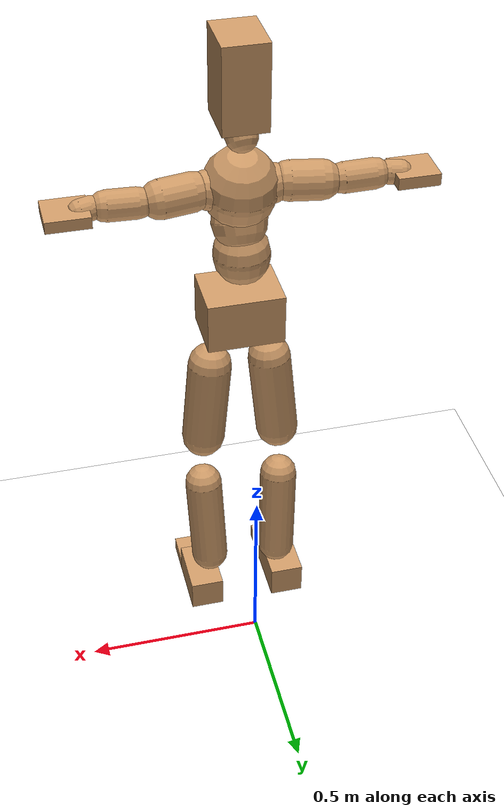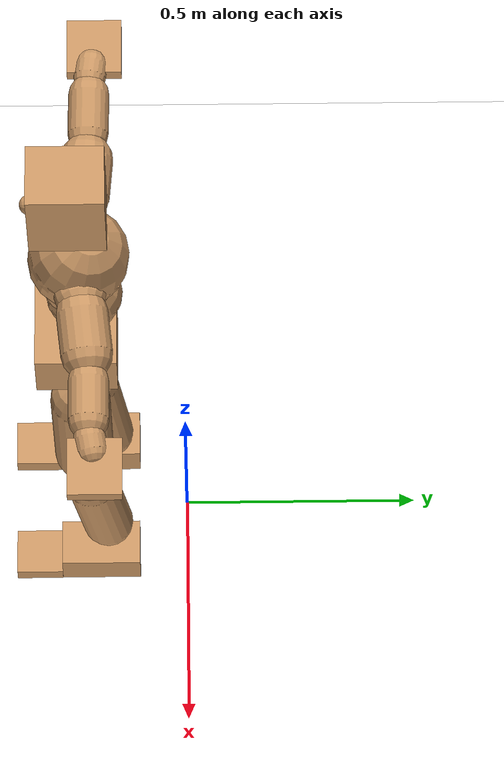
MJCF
<mujoco model="humanoid">
  <option integrator="implicitfast" />

  <visual>
    <global offwidth="1280" offheight="960" />
    <headlight active="1" ambient="0.34 0.34 0.34" diffuse="0.5 0.5 0.5" />
  </visual>

  <default>
    <joint damping="2" stiffness="2" armature="0.01" limited="true" solimplimit="0 .99 .01" />
    <geom condim="1" friction="0.7 0.005 0.0001" solimp=".99 .99 .003" solref="0.015 1" margin="0.001" rgba="0.8 0.6 .4 1" />
    <default class="smplcontact">
      <geom condim="3" friction="1. 0.005 0.0001" solref="0.015 1" solimp="0.98 0.98 0.001" priority="1" />
    </default>
    <default class="stiff_medium">
      <joint stiffness="10" />
    </default>
    <default class="stiff_medium_higher">
      <joint stiffness="50" />
    </default>
    <default class="stiff_high">
      <joint stiffness="100" />
    </default>
  </default>

  <asset>
    <texture type="skybox" builtin="gradient" rgb1="0.99 0.99 0.99" rgb2="0.608 0.828 0.892" width="100" />
    <texture builtin="flat" height="1278" mark="cross" markrgb="1 1 1" name="texgeom" random="0.01" rgb1="0.8 0.6 0.4" rgb2="0.8 0.6 0.4" type="cube" width="127" />
    <texture name="texplane" type="2d" builtin="checker" markrgb="1 1 1" rgb1="0.756 0.772 0.76" rgb2="0.6 0.6 0.6" width="100" height="100" />
    <material name="MatPlane" reflectance="0.5" texture="texplane" texrepeat="1 1" texuniform="true" />
    <material name="geom" texture="texgeom" texuniform="true" />
  </asset>

  <worldbody>
    <light name="tracking_light" pos="0 0 7" dir="0 0 -1" directional="true" cutoff="100" exponent="1" diffuse="1 1 1" specular="0.1 0.1 0.1" mode="trackcom" />
    <camera name="back" pos="0 3 2.4" xyaxes="-1 0 0 0 -1 2" mode="trackcom" />
    <camera name="side" pos="-3 0 2.4" xyaxes="0 -1 0 1 0 2" mode="trackcom" />
    <camera name="front_side" pos="-2.8 -2.8 0.8" xyaxes="0.5 -0.5 0 0.1 0.1 1" mode="trackcom" />
    <geom condim="3" name="floor" pos="0 0 0" rgba="1 1 1 1" size="100 100 .2" type="plane" material="MatPlane" />
    <body name="Pelvis" pos="-0.0018 -0.2233 1.05109" euler="90 0 0">
      <site name="Pelvis" size="0.01" />
      <freejoint name="Pelvis" />
      <geom type="box" pos="-0.0000 -0.0121 -0.0055" size="0.1069 0.0722 0.083" quat="1.0000 0.0000 0.0000 0.0000" density="3165.830099" name="Pelvis" />
      <body name="L_Hip" pos="0.0781875 -0.102825 -0.00765">
        <joint name="L_Hip_x" type="hinge" pos="0 0 0" axis="1 0 0" stiffness="12.190417346938776" range="-160.0 22.92" class="stiff_medium" damping="19.23943835853268" armature="0.013495335550763793"/>
        <joint name="L_Hip_y" type="hinge" pos="0 0 0" axis="0 1 0" stiffness="12.1624156122449" range="-70.0 70.0" class="stiff_medium" damping="12.013485255911052" armature="0.011866378571103064"/>
        <joint name="L_Hip_z" type="hinge" pos="0 0 0" axis="0 0 1" stiffness="12.164813061224491" range="-28.65 90.0" class="stiff_medium" damping="12.81394800146982" armature="0.013497721876857558"/>
        <geom type="capsule" density="2040.816327" fromto="0.0077625 -0.084375 -0.0010125 0.030825 -0.337725 -0.00405" size="0.0615" name="L_Hip" />
        <body name="L_Knee" pos="0.0385875 -0.4221 -0.0050625">
          <joint name="L_Knee_x" type="hinge" pos="0 0 0" axis="1 0 0" range="-5.16 171.89" damping="10.076823862713256" armature="0.013188848617403113" stiffness="2.4059714693877554"/>
          <joint name="L_Knee_y" type="hinge" pos="0 0 0" axis="0 1 0" range="-4.58 6.88" damping="9.486100019400173" armature="0.011596019506642574" stiffness="2.4250264693877552"/>
          <joint name="L_Knee_z" type="hinge" pos="0 0 0" axis="0 0 1" range="-6.88 4.58" damping="10.063496829521752" armature="0.013200099383969112" stiffness="2.3975664285714284"/>
          <geom type="capsule" density="1234.567901" fromto="-0.0030375 -0.08955 -0.0097875 -0.0122625 -0.3582 -0.039375" size="0.0541" name="L_Knee" />
          <body name="L_Ankle" pos="-0.0153 -0.44775 -0.0491625">
            <joint name="L_Ankle_x" type="hinge" pos="0 0 0" axis="1 0 0" range="-45.84 45.84" class="stiff_medium" damping="6.897532818423138" armature="0.011747130867095388" stiffness="11.250018673469388"/>
            <joint name="L_Ankle_y" type="hinge" pos="0 0 0" axis="0 1 0" range="-74.48 22.92" class="stiff_medium" damping="3.439211388477543" armature="0.011682135831686718" stiffness="11.250011836734695"/>
            <joint name="L_Ankle_z" type="hinge" pos="0 0 0" axis="0 0 1" range="-4.58 4.58" class="stiff_medium" damping="6.751978545825255" armature="0.011256596119329512" stiffness="11.25"/>
            <geom type="box" pos="0.0262125 -0.0268875 0.027225" size="0.0483 0.0464 0.085" quat="1.0000 0.0000 0.0000 0.0000" density="449.071558" name="L_Ankle" class="smplcontact" />
            <body name="L_Toe" pos="0.0297 -0.062775 0.134213">
              <joint name="L_Toe_x" type="hinge" pos="0 0 0" axis="1 0 0" range="-91.67 22.92" armature="0.01100987413972891" damping="2.225857893684592" stiffness="2.25"/>
              <joint name="L_Toe_y" type="hinge" pos="0 0 0" axis="0 1 0" range="-4.58 4.58" armature="0.010711537859158194" damping="2.1954935747164432" stiffness="2.25"/>
              <joint name="L_Toe_z" type="hinge" pos="0 0 0" axis="0 0 1" range="-4.58 4.58" armature="0.010108317957714816" damping="2.132778254055416" stiffness="2.25"/>
              <geom type="box" pos="-0.003375 0.0061875 0.0279" size="0.0478 0.02 0.0496" quat="1.0000 0.0000 0.0000 0.0000" density="423.206892" name="L_Toe" class="smplcontact" />
            </body>
          </body>
        </body>
      </body>
      <body name="R_Hip" pos="-0.0761625 -0.101813 -0.0048375">
        <joint name="R_Hip_x" type="hinge" pos="0 0 0" axis="1 0 0" stiffness="12.190417346938776" range="-160.0 22.92" class="stiff_medium" damping="19.23943835853268" armature="0.013495335550763793"/>
        <joint name="R_Hip_y" type="hinge" pos="0 0 0" axis="0 1 0" stiffness="12.1624156122449" range="-70.0 70.0" class="stiff_medium" damping="12.013485255911052" armature="0.011866378571103064"/>
        <joint name="R_Hip_z" type="hinge" pos="0 0 0" axis="0 0 1" stiffness="12.164813061224491" range="-90.0 28.65" class="stiff_medium" damping="12.81394800146982" armature="0.013497721876857558"/>
        <geom type="capsule" density="2040.816327" fromto="-0.0086625 -0.0860625 -0.002025 -0.034425 -0.344362 -0.0079875" size="0.0606" name="R_Hip" />
        <body name="R_Knee" pos="-0.0430875 -0.430425 -0.0100125">
          <joint name="R_Knee_x" type="hinge" pos="0 0 0" axis="1 0 0" range="-5.16 171.89" damping="10.076823862713256" armature="0.013188848617403113" stiffness="2.4059714693877554"/>
          <joint name="R_Knee_y" type="hinge" pos="0 0 0" axis="0 1 0" range="-6.88 4.58" damping="9.486100019400173" armature="0.011596019506642574" stiffness="2.4250264693877552"/>
          <joint name="R_Knee_z" type="hinge" pos="0 0 0" axis="0 0 1" range="-4.58 6.88" damping="10.063496829521752" armature="0.013200099383969112" stiffness="2.3975664285714284"/>
          <geom type="capsule" density="1234.567901" fromto="0.0036 -0.0896625 -0.0095625 0.014175 -0.358537 -0.038025" size="0.0541" name="R_Knee" />
          <body name="R_Ankle" pos="0.017775 -0.4482 -0.0475875">
            <joint name="R_Ankle_x" type="hinge" pos="0 0 0" axis="1 0 0" range="-45.84 45.84" class="stiff_medium" damping="6.897532818423138" armature="0.011747130867095388" stiffness="11.250018673469388"/>
            <joint name="R_Ankle_y" type="hinge" pos="0 0 0" axis="0 1 0" range="-22.92 74.48" class="stiff_medium" damping="3.439211388477543" armature="0.011682135831686718" stiffness="11.250011836734695"/>
            <joint name="R_Ankle_z" type="hinge" pos="0 0 0" axis="0 0 1" range="-4.58 4.58" class="stiff_medium" damping="6.751978545825255" armature="0.011256596119329512" stiffness="11.25"/>
            <geom type="box" pos="-0.02385 -0.019575 0.0288" size="0.0483 0.0478 0.0865" quat="1.0000 0.0000 0.0000 0.0000" density="434.700981" name="R_Ankle" class="smplcontact" />
            <body name="R_Toe" pos="-0.028575 -0.0541125 0.138713">
              <joint name="R_Toe_x" type="hinge" pos="0 0 0" axis="1 0 0" range="-91.67 22.92" armature="0.01100987413972891" damping="2.225857893684592" stiffness="2.25"/>
              <joint name="R_Toe_y" type="hinge" pos="0 0 0" axis="0 1 0" range="-4.58 4.58" armature="0.010711537859158194" damping="2.1954935747164432" stiffness="2.25"/>
              <joint name="R_Toe_z" type="hinge" pos="0 0 0" axis="0 0 1" range="-4.58 4.58" armature="0.010108317957714816" damping="2.132778254055416" stiffness="2.25"/>
              <geom type="box" pos="0.004725 0.0050625 0.0255375" size="0.0479 0.0216 0.0493" quat="1.0000 0.0000 0.0000 0.0000" density="407.384095" name="R_Toe" class="smplcontact" />
            </body>
          </body>
        </body>
      </body>
      <body name="Torso" pos="-0.0025 0.109 -0.0267">
        <joint name="Torso_x" type="hinge" pos="0 0 0" axis="1 0 0" range="-25.78 57.3" class="stiff_medium" damping="12.833128643120638" armature="0.0083898677557267" stiffness="8.724237142857143"/>
        <joint name="Torso_y" type="hinge" pos="0 0 0" axis="0 1 0" range="-57.3 57.3" class="stiff_high" damping="9.641007877053582" armature="0.0026152511802961754" stiffness="88.85287346938776"/>
        <joint name="Torso_z" type="hinge" pos="0 0 0" axis="0 0 1" range="-34.38 34.38" class="stiff_high" damping="15.256621848072813" armature="0.006404603814601964" stiffness="90.85827826086955"/>
        <geom type="capsule" density="2040.816327" fromto="0.0025 0.0608 0.0005 0.003 0.0743 0.0006" size="0.0769" name="Torso" />
        <body name="Spine" pos="0.0055 0.1352 0.0011">
          <joint name="Spine_x" type="hinge" pos="0 0 0" axis="1 0 0" stiffness="8.524132708333333" range="-25.78 57.3" class="stiff_medium" damping="12.593328186154572" armature="0.008268911088118515"/>
          <joint name="Spine_y" type="hinge" pos="0 0 0" axis="0 1 0" stiffness="8.372724772727274" range="-57.3 57.3" class="stiff_high" damping="3.7058359647278705" armature="0.002562864197858745"/>
          <joint name="Spine_z" type="hinge" pos="0 0 0" axis="0 0 1" stiffness="17.091765581395343" range="-34.38 34.38" class="stiff_high" damping="7.912330782724082" armature="0.005087324565503506"/>
          <geom type="capsule" density="2040.816327" fromto="0.0007 0.0238 0.0114 0.0008 0.0291 0.014" size="0.0755" name="Spine" />
          <body name="Chest" pos="0.0015 0.0529 0.0254">
            <joint name="Chest_x" type="hinge" pos="0 0 0" axis="1 0 0" stiffness="8.200278372093024" range="-25.78 57.3" class="stiff_medium" damping="12.31981661549886" armature="0.00822616417814673"/>
            <joint name="Chest_y" type="hinge" pos="0 0 0" axis="0 1 0" stiffness="6.66116392857143" range="-57.3 57.3" class="stiff_high" damping="3.2862373670032503" armature="0.0025331899922285133"/>
            <joint name="Chest_z" type="hinge" pos="0 0 0" axis="0 0 1" stiffness="16.64932651162791" range="-34.38 34.38" class="stiff_high" damping="7.360514262532792" armature="0.0045194662788371025"/>
            <geom type="capsule" density="2040.816327" fromto="-0.0009 0.0682 -0.0173 -0.001 0.0833 -0.0212" size="0.1002" name="Chest" />
            <body name="Neck" pos="-0.0028 0.2139 -0.0429">
              <joint name="Neck_x" type="hinge" pos="0 0 0" axis="1 0 0" range="-28.65 57.3" class="stiff_medium_higher" damping="10.0" armature="0.01" stiffness="50.0"/>
              <joint name="Neck_y" type="hinge" pos="0 0 0" axis="0 1 0" range="-40.11 40.11" class="stiff_medium_higher" damping="10.0" armature="0.010000000000000002" stiffness="50.0"/>
              <joint name="Neck_z" type="hinge" pos="0 0 0" axis="0 0 1" range="-40.11 40.11" class="stiff_medium_higher" damping="10.000000000000002" armature="0.010000000000000005" stiffness="50.0"/>
              <geom type="capsule" density="1000" fromto="0.001 0.013 0.0103 0.0041 0.052 0.0411" size="0.0436" name="Neck" />
              <body name="Head" pos="0.0052 0.065 0.0513">
                <joint name="Head_x" type="hinge" pos="0 0 0" axis="1 0 0" range="-28.65 57.3" class="stiff_medium_higher" damping="2.0000000000000027" armature="0.010000000000000026" stiffness="50.0"/>
                <joint name="Head_y" type="hinge" pos="0 0 0" axis="0 1 0" range="-40.11 40.11" class="stiff_medium_higher" damping="1.9999999999999998" armature="0.009999999999999998" stiffness="50.0"/>
                <joint name="Head_z" type="hinge" pos="0 0 0" axis="0 0 1" range="-40.11 40.11" class="stiff_medium_higher" damping="2.0000000000000036" armature="0.010000000000000035" stiffness="50.0"/>
                <geom type="box" pos="-0.0042 0.0876 -0.0116" size="0.0606 0.1154 0.076" quat="1.0000 0.0000 0.0000 0.0000" density="1018.069894" name="Head" />
                <geom type="capsule" name="nose" size="0.02 0.01" pos="0 0.07 0.05" quat="1 0 0 0" mass="0" contype="0" conaffinity="0" />
              </body>
            </body>
            <body name="L_Thorax" pos="0.04334 0.066935 -0.018755">
              <joint name="L_Thorax_x" type="hinge" pos="0 0 0" axis="1 0 0" range="-10.89 4.58" class="stiff_medium_higher" damping="8.434703621562887" armature="0.004456108006307228" stiffness="19.956940306122444"/>
              <joint name="L_Thorax_y" type="hinge" pos="0 0 0" axis="0 1 0" range="-28.65 17.19" class="stiff_medium_higher" damping="6.022763730189366" armature="0.0023084620474975964" stiffness="19.641693367346935"/>
              <joint name="L_Thorax_z" type="hinge" pos="0 0 0" axis="0 0 1" range="-31.51 40.11" class="stiff_medium_higher" damping="6.02065965232687" armature="0.0023064402545495124" stiffness="19.64517755102041"/>
              <geom type="capsule" density="1000" fromto="0.01001 0.003355 -0.00099 0.04004 0.01342 -0.003905" size="0.0521" name="L_Thorax" />
              <body name="L_Shoulder" pos="0.05005 0.016775 -0.004895">
                <joint name="L_Shoulder_x" type="hinge" pos="0 0 0" axis="1 0 0" range="-97.4 97.4" class="stiff_medium" damping="2.7507326192703907" armature="0.005207580254125754" stiffness="4.036066215805471"/>
                <joint name="L_Shoulder_y" type="hinge" pos="0 0 0" axis="0 1 0" range="-108.86 80.21" class="stiff_medium" damping="1.8298767221096353" armature="0.0023536822566645405" stiffness="3.9517852040816326"/>
                <joint name="L_Shoulder_z" type="hinge" pos="0 0 0" axis="0 0 1" range="-97.4 85.94" class="stiff_medium" damping="1.8299095357342474" armature="0.0023507489222583926" stiffness="3.9568582653061224"/>
                <geom type="capsule" density="1000" fromto="0.028545 -0.00143 -0.003025 0.114235 -0.00561 -0.0121" size="0.0517" name="L_Shoulder" />
                <body name="L_Elbow" pos="0.14278 -0.00704 -0.015125">
                  <joint name="L_Elbow_x" type="hinge" pos="0 0 0" axis="1 0 0" range="-17.19 4.58" damping="2.63838098611626" armature="0.006602890217627091" stiffness="0.8433948163265306"/>
                  <joint name="L_Elbow_y" type="hinge" pos="0 0 0" axis="0 1 0" range="-180.0 17.19" damping="1.6493311800762023" armature="0.0025828362461048147" stiffness="0.842575551020408"/>
                  <joint name="L_Elbow_z" type="hinge" pos="0 0 0" axis="0 0 1" range="-100.84 4.58" damping="1.645769253714412" armature="0.002567445381083715" stiffness="0.8439693265306122"/>
                  <geom type="capsule" density="1000" fromto="0.02739 0.00099 -0.00011 0.10967 0.00396 -0.000495" size="0.0405" name="L_Elbow" />
                  <body name="L_Wrist" pos="0.13706 0.00495 -0.00066">
                    <joint name="L_Wrist_x" type="hinge" pos="0 0 0" axis="1 0 0" range="-180.0 22.92" armature="0.007461834395238727" damping="1.227949420458736" stiffness="1.0103814285714288"/>
                    <joint name="L_Wrist_y" type="hinge" pos="0 0 0" axis="0 1 0" range="-17.19 17.19" armature="0.003664915616612696" damping="0.854957534676404" stiffness="0.9972294897959184"/>
                    <joint name="L_Wrist_z" type="hinge" pos="0 0 0" axis="0 0 1" range="-22.92 22.92" armature="0.003441422269276073" damping="0.8306797080467335" stiffness="1.002534306122449"/>
                    <geom type="capsule" density="1000" fromto="0.00924 -0.00088 -0.00165 0.03696 -0.003575 -0.0066" size="0.0318" name="L_Wrist" class="smplcontact" />
                    <body name="L_Hand" pos="0.0462 -0.00451 -0.008195">
                      <joint name="L_Hand_x" type="hinge" pos="0 0 0" axis="1 0 0" range="-17.19 17.19" armature="0.009696126030368842" damping="1.4605299472044881" stiffness="1.0999999999999999"/>
                      <joint name="L_Hand_y" type="hinge" pos="0 0 0" axis="0 1 0" range="-51.57 51.57" armature="0.0063250635764966435" damping="1.1796245109479802" stiffness="1.0999999999999999"/>
                      <joint name="L_Hand_z" type="hinge" pos="0 0 0" axis="0 0 1" range="-91.67 91.67" armature="0.0054264608203164165" damping="1.0926213344382452" stiffness="1.0999999999999999"/>
                      <geom type="box" pos="0.027115 0.00055 -0.00319" size="0.0585 0.0158 0.0538" quat="1.0000 0.0000 0.0000 0.0000" density="400.552564" name="L_Hand" class="smplcontact" />
                    </body>
                  </body>
                </body>
              </body>
            </body>
            <body name="R_Thorax" pos="-0.04499 0.06534 -0.02123">
              <joint name="R_Thorax_x" type="hinge" pos="0 0 0" axis="1 0 0" range="-10.89 4.58" class="stiff_medium_higher" damping="8.434703621562887" armature="0.004456108006307228" stiffness="19.956940306122444"/>
              <joint name="R_Thorax_y" type="hinge" pos="0 0 0" axis="0 1 0" range="-17.19 28.65" class="stiff_medium_higher" damping="6.022763730189366" armature="0.0023084620474975964" stiffness="19.641693367346935"/>
              <joint name="R_Thorax_z" type="hinge" pos="0 0 0" axis="0 0 1" range="-40.11 31.51" class="stiff_medium_higher" damping="6.02065965232687" armature="0.0023064402545495124" stiffness="19.64517755102041"/>
              <geom type="capsule" density="1000" fromto="-0.01056 0.003575 -0.00099 -0.04224 0.0143 -0.004015" size="0.0511" name="R_Thorax" />
              <body name="R_Shoulder" pos="-0.0528 0.01793 -0.005005">
                <joint name="R_Shoulder_x" type="hinge" pos="0 0 0" axis="1 0 0" range="-97.4 97.4" class="stiff_medium" damping="2.7507326192703907" armature="0.005207580254125754" stiffness="4.036066215805471"/>
                <joint name="R_Shoulder_y" type="hinge" pos="0 0 0" axis="0 1 0" range="-80.21 108.86" class="stiff_medium" damping="1.8298767221096353" armature="0.0023536822566645405" stiffness="3.9517852040816326"/>
                <joint name="R_Shoulder_z" type="hinge" pos="0 0 0" axis="0 0 1" range="-85.94 97.4" class="stiff_medium" damping="1.8299095357342474" armature="0.0023507489222583926" stiffness="3.9568582653061224"/>
                <geom type="capsule" density="1000" fromto="-0.027885 -0.001485 -0.002365 -0.11165 -0.005885 -0.009405" size="0.0531" name="R_Shoulder" />
                <body name="R_Elbow" pos="-0.139535 -0.007315 -0.01177">
                  <joint name="R_Elbow_x" type="hinge" pos="0 0 0" axis="1 0 0" range="-17.19 4.58" damping="2.63838098611626" armature="0.006602890217627091" stiffness="0.8433948163265306"/>
                  <joint name="R_Elbow_y" type="hinge" pos="0 0 0" axis="0 1 0" range="-17.19 180.0" damping="1.6493311800762023" armature="0.0025828362461048147" stiffness="0.842575551020408"/>
                  <joint name="R_Elbow_z" type="hinge" pos="0 0 0" axis="0 0 1" range="-4.58 100.84" damping="1.645769253714412" armature="0.002567445381083715" stiffness="0.8439693265306122"/>
                  <geom type="capsule" density="1000" fromto="-0.028105 0.00088 -0.000605 -0.11231 0.00341 -0.00242" size="0.0408" name="R_Elbow" />
                  <body name="R_Wrist" pos="-0.140415 0.00429 -0.00308">
                    <joint name="R_Wrist_x" type="hinge" pos="0 0 0" axis="1 0 0" range="-180.0 22.92" armature="0.007461834395238727" damping="1.227949420458736" stiffness="1.0103814285714288"/>
                    <joint name="R_Wrist_y" type="hinge" pos="0 0 0" axis="0 1 0" range="-17.19 17.19" armature="0.003664915616612696" damping="0.854957534676404" stiffness="0.9972294897959184"/>
                    <joint name="R_Wrist_z" type="hinge" pos="0 0 0" axis="0 0 1" range="-22.92 22.92" armature="0.003441422269276073" damping="0.8306797080467335" stiffness="1.002534306122449"/>
                    <geom type="capsule" density="1000" fromto="-0.009295 -0.00066 -0.001155 -0.037235 -0.002695 -0.004565" size="0.0326" name="R_Wrist" class="smplcontact" />
                    <body name="R_Hand" pos="-0.04653 -0.003355 -0.005665">
                      <joint name="R_Hand_x" type="hinge" pos="0 0 0" axis="1 0 0" range="-17.19 17.19" armature="0.009696126030368842" damping="1.4605299472044881" stiffness="1.0999999999999999"/>
                      <joint name="R_Hand_y" type="hinge" pos="0 0 0" axis="0 1 0" range="-51.57 51.57" armature="0.0063250635764966435" damping="1.1796245109479802" stiffness="1.0999999999999999"/>
                      <joint name="R_Hand_z" type="hinge" pos="0 0 0" axis="0 0 1" range="-91.67 91.67" armature="0.0054264608203164165" damping="1.0926213344382452" stiffness="1.0999999999999999"/>
                      <geom type="box" pos="-0.02541 -0.000495 -0.004345" size="0.0569 0.0164 0.0546" quat="1.0000 0.0000 0.0000 0.0000" density="403.679611" name="R_Hand" class="smplcontact" />
                    </body>
                  </body>
                </body>
              </body>
            </body>
          </body>
        </body>
      </body>
    </body>
  </worldbody>
  <actuator>
    <general name="L_Hip_x" joint="L_Hip_x" biastype="affine" gainprm="350.267339766903" biasprm="-262.4898695344799 -219.42751224489797 -2.565258447804357" ctrllimited="true" ctrlrange="-1 1" forcerange="-438.85502448979594 438.85502448979594" />
    <general name="L_Hip_y" joint="L_Hip_y" biastype="affine" gainprm="267.4654887613407" biasprm="0.0 -218.9234810204082 -2.4026970511822103" ctrllimited="true" ctrlrange="-1 1" forcerange="-437.8469620408164 437.8469620408164" />
    <general name="L_Hip_z" joint="L_Hip_z" biastype="affine" gainprm="226.72168417679922" biasprm="117.23030193212499 -218.96663510204084 -2.562789600293964" ctrllimited="true" ctrlrange="-1 1" forcerange="-437.9332702040817 437.9332702040817" />
    <general name="L_Knee_x" joint="L_Knee_x" biastype="affine" gainprm="334.5617487428154" biasprm="315.0606064269393 -216.53743224489799 -2.519205965678314" ctrllimited="true" ctrlrange="-1 1" forcerange="-433.07486448979597 433.07486448979597" />
    <general name="L_Knee_y" joint="L_Knee_y" biastype="affine" gainprm="21.82684590193453" biasprm="4.380606071068885 -218.25238224489797 -2.371525004850043" ctrllimited="true" ctrlrange="-1 1" forcerange="-436.50476448979595 436.50476448979595" />
    <general name="L_Knee_z" joint="L_Knee_z" biastype="affine" gainprm="21.579687329883924" biasprm="-4.331001820133772 -215.78097857142856 -2.515874207380438" ctrllimited="true" ctrlrange="-1 1" forcerange="-431.5619571428571 431.5619571428571" />
    <general name="L_Ankle_x" joint="L_Ankle_x" biastype="affine" gainprm="81.00610103169612" biasprm="0.0 -101.2501680612245 -2.299177606141046" ctrllimited="true" ctrlrange="-1 1" forcerange="-202.500336122449 202.500336122449" />
    <general name="L_Ankle_y" joint="L_Ankle_y" biastype="affine" gainprm="86.06009430266938" biasprm="-45.557068400879196 -101.25010653061226 -2.2928075923183617" ctrllimited="true" ctrlrange="-1 1" forcerange="-202.5002130612245 202.5002130612245" />
    <general name="L_Ankle_z" joint="L_Ankle_z" biastype="affine" gainprm="8.093528073810704" biasprm="0.0 -101.25 -2.250659515275085" ctrllimited="true" ctrlrange="-1 1" forcerange="-202.5 202.5" />
    <general name="L_Toe_x" joint="L_Toe_x" biastype="affine" gainprm="80.99889798934223" biasprm="-48.59651136021711 -81.0 -0.8903431574738369" ctrllimited="true" ctrlrange="-1 1" forcerange="-162.0 162.0" />
    <general name="L_Toe_y" joint="L_Toe_y" biastype="affine" gainprm="6.474822459048563" biasprm="0.0 -81.0 -0.8781974298865773" ctrllimited="true" ctrlrange="-1 1" forcerange="-162.0 162.0" />
    <general name="L_Toe_z" joint="L_Toe_z" biastype="affine" gainprm="6.474822459048563" biasprm="0.0 -81.0 -0.8531113016221664" ctrllimited="true" ctrlrange="-1 1" forcerange="-162.0 162.0" />
    <general name="R_Hip_x" joint="R_Hip_x" biastype="affine" gainprm="350.267339766903" biasprm="-262.4898695344799 -219.42751224489797 -2.565258447804357" ctrllimited="true" ctrlrange="-1 1" forcerange="-438.85502448979594 438.85502448979594" />
    <general name="R_Hip_y" joint="R_Hip_y" biastype="affine" gainprm="267.4654887613407" biasprm="0.0 -218.9234810204082 -2.4026970511822103" ctrllimited="true" ctrlrange="-1 1" forcerange="-437.8469620408164 437.8469620408164" />
    <general name="R_Hip_z" joint="R_Hip_z" biastype="affine" gainprm="226.72168417679922" biasprm="-117.23030193212499 -218.96663510204084 -2.562789600293964" ctrllimited="true" ctrlrange="-1 1" forcerange="-437.9332702040817 437.9332702040817" />
    <general name="R_Knee_x" joint="R_Knee_x" biastype="affine" gainprm="334.5617487428154" biasprm="315.0606064269393 -216.53743224489799 -2.519205965678314" ctrllimited="true" ctrlrange="-1 1" forcerange="-433.07486448979597 433.07486448979597" />
    <general name="R_Knee_y" joint="R_Knee_y" biastype="affine" gainprm="21.82684590193453" biasprm="-4.380606071068885 -218.25238224489797 -2.371525004850043" ctrllimited="true" ctrlrange="-1 1" forcerange="-436.50476448979595 436.50476448979595" />
    <general name="R_Knee_z" joint="R_Knee_z" biastype="affine" gainprm="21.579687329883924" biasprm="4.331001820133772 -215.78097857142856 -2.515874207380438" ctrllimited="true" ctrlrange="-1 1" forcerange="-431.5619571428571 431.5619571428571" />
    <general name="R_Ankle_x" joint="R_Ankle_x" biastype="affine" gainprm="81.00610103169612" biasprm="0.0 -101.2501680612245 -2.299177606141046" ctrllimited="true" ctrlrange="-1 1" forcerange="-202.500336122449 202.500336122449" />
    <general name="R_Ankle_y" joint="R_Ankle_y" biastype="affine" gainprm="86.06009430266938" biasprm="45.557068400879196 -101.25010653061226 -2.2928075923183617" ctrllimited="true" ctrlrange="-1 1" forcerange="-202.5002130612245 202.5002130612245" />
    <general name="R_Ankle_z" joint="R_Ankle_z" biastype="affine" gainprm="8.093528073810704" biasprm="0.0 -101.25 -2.250659515275085" ctrllimited="true" ctrlrange="-1 1" forcerange="-202.5 202.5" />
    <general name="R_Toe_x" joint="R_Toe_x" biastype="affine" gainprm="80.99889798934223" biasprm="-48.59651136021711 -81.0 -0.8903431574738369" ctrllimited="true" ctrlrange="-1 1" forcerange="-162.0 162.0" />
    <general name="R_Toe_y" joint="R_Toe_y" biastype="affine" gainprm="6.474822459048563" biasprm="0.0 -81.0 -0.8781974298865773" ctrllimited="true" ctrlrange="-1 1" forcerange="-162.0 162.0" />
    <general name="R_Toe_z" joint="R_Toe_z" biastype="affine" gainprm="6.474822459048563" biasprm="0.0 -81.0 -0.8531113016221664" ctrllimited="true" ctrlrange="-1 1" forcerange="-162.0 162.0" />
    <general name="Torso_x" joint="Torso_x" biastype="affine" gainprm="151.80377221252243" biasprm="57.593342563056154 -209.38169142857143 -3.4221676381655035" ctrllimited="true" ctrlrange="-1 1" forcerange="-314.07253714285713 314.07253714285713" />
    <general name="Torso_y" joint="Torso_y" biastype="affine" gainprm="213.26260438991383" biasprm="0.0 -213.24689632653062 -1.9282015754107165" ctrllimited="true" ctrlrange="-1 1" forcerange="-319.8703444897959 319.8703444897959" />
    <general name="Torso_z" joint="Torso_z" biastype="affine" gainprm="130.84555825179245" biasprm="0.0 -218.05986782608693 -3.0513243696145627" ctrllimited="true" ctrlrange="-1 1" forcerange="-327.0898017391304 327.0898017391304" />
    <general name="Spine_x" joint="Spine_x" biastype="affine" gainprm="148.32190812518058" biasprm="56.272346462514335 -204.579185 -3.3582208496412194" ctrllimited="true" ctrlrange="-1 1" forcerange="-306.86877749999996 306.86877749999996" />
    <general name="Spine_y" joint="Spine_y" biastype="affine" gainprm="200.96019646308363" biasprm="0.0 -200.94539454545458 -1.8529179823639352" ctrllimited="true" ctrlrange="-1 1" forcerange="-301.41809181818184 301.41809181818184" />
    <general name="Spine_z" joint="Spine_z" biastype="affine" gainprm="123.06977700949903" biasprm="0.0 -205.10118697674412 -2.6374435942413608" ctrllimited="true" ctrlrange="-1 1" forcerange="-307.6517804651162 307.6517804651162" />
    <general name="Chest_x" joint="Chest_x" biastype="affine" gainprm="142.68676672729774" biasprm="54.13441125715483 -196.80668093023257 -3.2852844307996962" ctrllimited="true" ctrlrange="-1 1" forcerange="-295.21002139534886 295.21002139534886" />
    <general name="Chest_y" joint="Chest_y" biastype="affine" gainprm="159.87971038041" biasprm="0.0 -159.8679342857143 -1.6431186835016252" ctrllimited="true" ctrlrange="-1 1" forcerange="-239.80190142857145 239.80190142857145" />
    <general name="Chest_z" joint="Chest_z" biastype="affine" gainprm="119.88398105429127" biasprm="0.0 -199.7919181395349 -2.4535047541775974" ctrllimited="true" ctrlrange="-1 1" forcerange="-299.68787720930237 299.68787720930237" />
    <general name="Neck_x" joint="Neck_x" biastype="affine" gainprm="27.00198885760427" biasprm="9.000662952534757 -36.0 -0.8" ctrllimited="true" ctrlrange="-1 1" forcerange="-72.0 72.0" />
    <general name="Neck_y" joint="Neck_y" biastype="affine" gainprm="25.20185626709732" biasprm="0.0 -36.0 -0.8" ctrllimited="true" ctrlrange="-1 1" forcerange="-72.0 72.0" />
    <general name="Neck_z" joint="Neck_z" biastype="affine" gainprm="25.20185626709732" biasprm="0.0 -36.0 -0.8000000000000003" ctrllimited="true" ctrlrange="-1 1" forcerange="-72.0 72.0" />
    <general name="Head_x" joint="Head_x" biastype="affine" gainprm="18.001325905069514" biasprm="6.000441968356505 -24.0 -0.8000000000000012" ctrllimited="true" ctrlrange="-1 1" forcerange="-48.0 48.0" />
    <general name="Head_y" joint="Head_y" biastype="affine" gainprm="16.801237511398213" biasprm="0.0 -24.0 -0.7999999999999999" ctrllimited="true" ctrlrange="-1 1" forcerange="-48.0 48.0" />
    <general name="Head_z" joint="Head_z" biastype="affine" gainprm="16.801237511398213" biasprm="0.0 -24.0 -0.8000000000000015" ctrllimited="true" ctrlrange="-1 1" forcerange="-48.0 48.0" />
    <general name="L_Thorax_x" joint="L_Thorax_x" biastype="affine" gainprm="6.466106980153143" biasprm="-2.6374360080650514 -47.89665673469387 -0.6747762897250311" ctrllimited="true" ctrlrange="-1 1" forcerange="-95.79331346938774 95.79331346938774" />
    <general name="L_Thorax_y" joint="L_Thorax_y" biastype="affine" gainprm="18.857414593762904" biasprm="-4.714353648440726 -47.140064081632644 -0.48182109841514936" ctrllimited="true" ctrlrange="-1 1" forcerange="-94.28012816326529 94.28012816326529" />
    <general name="L_Thorax_z" joint="L_Thorax_z" biastype="affine" gainprm="29.46787972505706" biasprm="3.538449673771163 -47.14842612244898 -0.4816527721861496" ctrllimited="true" ctrlrange="-1 1" forcerange="-94.29685224489796 94.29685224489796" />
    <general name="L_Shoulder_x" joint="L_Shoulder_x" biastype="affine" gainprm="32.93334506047744" biasprm="0.0 -19.373117835866264 -0.7335286984721043" ctrllimited="true" ctrlrange="-1 1" forcerange="-38.74623567173253 38.74623567173253" />
    <general name="L_Shoulder_y" joint="L_Shoulder_y" biastype="affine" gainprm="31.297133640991394" biasprm="-4.74249155770034 -18.968568979591836 -0.4879671258959028" ctrllimited="true" ctrlrange="-1 1" forcerange="-37.93713795918367 37.93713795918367" />
    <general name="L_Shoulder_z" joint="L_Shoulder_z" biastype="affine" gainprm="30.387595059587213" biasprm="-1.8994318718384982 -18.992919673469387 -0.48797587619579935" ctrllimited="true" ctrlrange="-1 1" forcerange="-37.985839346938775 37.985839346938775" />
    <general name="L_Elbow_x" joint="L_Elbow_x" biastype="affine" gainprm="5.768185641845626" biasprm="-3.3411493313584466 -30.3622133877551 -0.4221409577786016" ctrllimited="true" ctrlrange="-1 1" forcerange="-60.7244267755102 60.7244267755102" />
    <general name="L_Elbow_y" joint="L_Elbow_y" biastype="affine" gainprm="52.19676802931011" biasprm="-43.09628177317298 -30.33271983673469 -0.26389298881219236" ctrllimited="true" ctrlrange="-1 1" forcerange="-60.66543967346938 60.66543967346938" />
    <general name="L_Elbow_z" joint="L_Elbow_z" biastype="affine" gainprm="27.951141407994328" biasprm="-25.522451830141666 -30.382895755102037 -0.2633230805943059" ctrllimited="true" ctrlrange="-1 1" forcerange="-60.765791510204075 60.765791510204075" />
    <general name="L_Wrist_x" joint="L_Wrist_x" biastype="affine" gainprm="10.735167645580283" biasprm="-8.310073594361082 -6.062288571428573 -0.4911797681834944" ctrllimited="true" ctrlrange="-1 1" forcerange="-12.124577142857145 12.124577142857145" />
    <general name="L_Wrist_y" joint="L_Wrist_y" biastype="affine" gainprm="1.7951453047962525" biasprm="0.0 -5.9833769387755105 -0.3419830138705616" ctrllimited="true" ctrlrange="-1 1" forcerange="-11.966753877551021 11.966753877551021" />
    <general name="L_Wrist_z" joint="L_Wrist_z" biastype="affine" gainprm="2.4062595700697247" biasprm="0.0 -6.015205836734694 -0.33227188321869344" ctrllimited="true" ctrlrange="-1 1" forcerange="-12.030411673469388 12.030411673469388" />
    <general name="L_Hand_x" joint="L_Hand_x" biastype="affine" gainprm="1.9801458495576467" biasprm="0.0 -6.6 -0.5842119788817953" ctrllimited="true" ctrlrange="-1 1" forcerange="-13.2 13.2" />
    <general name="L_Hand_y" joint="L_Hand_y" biastype="affine" gainprm="5.940437548672939" biasprm="0.0 -6.6 -0.4718498043791921" ctrllimited="true" ctrlrange="-1 1" forcerange="-13.2 13.2" />
    <general name="L_Hand_z" joint="L_Hand_z" biastype="affine" gainprm="10.55962594700113" biasprm="0.0 -6.6 -0.43704853377529806" ctrllimited="true" ctrlrange="-1 1" forcerange="-13.2 13.2" />
    <general name="R_Thorax_x" joint="R_Thorax_x" biastype="affine" gainprm="6.466106980153143" biasprm="-2.6374360080650514 -47.89665673469387 -0.6747762897250311" ctrllimited="true" ctrlrange="-1 1" forcerange="-95.79331346938774 95.79331346938774" />
    <general name="R_Thorax_y" joint="R_Thorax_y" biastype="affine" gainprm="18.857414593762904" biasprm="4.714353648440723 -47.140064081632644 -0.48182109841514936" ctrllimited="true" ctrlrange="-1 1" forcerange="-94.28012816326529 94.28012816326529" />
    <general name="R_Thorax_z" joint="R_Thorax_z" biastype="affine" gainprm="29.46787972505706" biasprm="-3.538449673771163 -47.14842612244898 -0.4816527721861496" ctrllimited="true" ctrlrange="-1 1" forcerange="-94.29685224489796 94.29685224489796" />
    <general name="R_Shoulder_x" joint="R_Shoulder_x" biastype="affine" gainprm="32.93334506047744" biasprm="0.0 -19.373117835866264 -0.7335286984721043" ctrllimited="true" ctrlrange="-1 1" forcerange="-38.74623567173253 38.74623567173253" />
    <general name="R_Shoulder_y" joint="R_Shoulder_y" biastype="affine" gainprm="31.297133640991394" biasprm="4.74249155770034 -18.968568979591836 -0.4879671258959028" ctrllimited="true" ctrlrange="-1 1" forcerange="-37.93713795918367 37.93713795918367" />
    <general name="R_Shoulder_z" joint="R_Shoulder_z" biastype="affine" gainprm="30.387595059587213" biasprm="1.899431871838494 -18.992919673469387 -0.48797587619579935" ctrllimited="true" ctrlrange="-1 1" forcerange="-37.985839346938775 37.985839346938775" />
    <general name="R_Elbow_x" joint="R_Elbow_x" biastype="affine" gainprm="5.768185641845626" biasprm="-3.3411493313584466 -30.3622133877551 -0.4221409577786016" ctrllimited="true" ctrlrange="-1 1" forcerange="-60.7244267755102 60.7244267755102" />
    <general name="R_Elbow_y" joint="R_Elbow_y" biastype="affine" gainprm="52.19676802931011" biasprm="43.09628177317298 -30.33271983673469 -0.26389298881219236" ctrllimited="true" ctrlrange="-1 1" forcerange="-60.66543967346938 60.66543967346938" />
    <general name="R_Elbow_z" joint="R_Elbow_z" biastype="affine" gainprm="27.951141407994328" biasprm="25.522451830141662 -30.382895755102037 -0.2633230805943059" ctrllimited="true" ctrlrange="-1 1" forcerange="-60.765791510204075 60.765791510204075" />
    <general name="R_Wrist_x" joint="R_Wrist_x" biastype="affine" gainprm="10.735167645580283" biasprm="-8.310073594361082 -6.062288571428573 -0.4911797681834944" ctrllimited="true" ctrlrange="-1 1" forcerange="-12.124577142857145 12.124577142857145" />
    <general name="R_Wrist_y" joint="R_Wrist_y" biastype="affine" gainprm="1.7951453047962525" biasprm="0.0 -5.9833769387755105 -0.3419830138705616" ctrllimited="true" ctrlrange="-1 1" forcerange="-11.966753877551021 11.966753877551021" />
    <general name="R_Wrist_z" joint="R_Wrist_z" biastype="affine" gainprm="2.4062595700697247" biasprm="0.0 -6.015205836734694 -0.33227188321869344" ctrllimited="true" ctrlrange="-1 1" forcerange="-12.030411673469388 12.030411673469388" />
    <general name="R_Hand_x" joint="R_Hand_x" biastype="affine" gainprm="1.9801458495576467" biasprm="0.0 -6.6 -0.5842119788817953" ctrllimited="true" ctrlrange="-1 1" forcerange="-13.2 13.2" />
    <general name="R_Hand_y" joint="R_Hand_y" biastype="affine" gainprm="5.940437548672939" biasprm="0.0 -6.6 -0.4718498043791921" ctrllimited="true" ctrlrange="-1 1" forcerange="-13.2 13.2" />
    <general name="R_Hand_z" joint="R_Hand_z" biastype="affine" gainprm="10.55962594700113" biasprm="0.0 -6.6 -0.43704853377529806" ctrllimited="true" ctrlrange="-1 1" forcerange="-13.2 13.2" />
  </actuator>
  <contact>
    <exclude body1="Torso" body2="Chest" />
    <exclude body1="Head" body2="Chest" />
    <exclude body1="R_Knee" body2="R_Toe" />
    <exclude body1="R_Knee" body2="L_Ankle" />
    <exclude body1="R_Knee" body2="L_Toe" />
    <exclude body1="L_Knee" body2="L_Toe" />
    <exclude body1="L_Knee" body2="R_Ankle" />
    <exclude body1="L_Knee" body2="R_Toe" />
    <exclude body1="L_Shoulder" body2="Chest" />
    <exclude body1="R_Shoulder" body2="Chest" />
  </contact>
  <sensor>
    <framelinvel name="sensor_Pelvis_framelinvel" objtype="xbody" objname="Pelvis" />
    <framelinvel name="sensor_L_Hip_framelinvel" objtype="xbody" objname="L_Hip" />
    <framelinvel name="sensor_L_Knee_framelinvel" objtype="xbody" objname="L_Knee" />
    <framelinvel name="sensor_L_Ankle_framelinvel" objtype="xbody" objname="L_Ankle" />
    <framelinvel name="sensor_L_Toe_framelinvel" objtype="xbody" objname="L_Toe" />
    <framelinvel name="sensor_R_Hip_framelinvel" objtype="xbody" objname="R_Hip" />
    <framelinvel name="sensor_R_Knee_framelinvel" objtype="xbody" objname="R_Knee" />
    <framelinvel name="sensor_R_Ankle_framelinvel" objtype="xbody" objname="R_Ankle" />
    <framelinvel name="sensor_R_Toe_framelinvel" objtype="xbody" objname="R_Toe" />
    <framelinvel name="sensor_Torso_framelinvel" objtype="xbody" objname="Torso" />
    <framelinvel name="sensor_Spine_framelinvel" objtype="xbody" objname="Spine" />
    <framelinvel name="sensor_Chest_framelinvel" objtype="xbody" objname="Chest" />
    <framelinvel name="sensor_Neck_framelinvel" objtype="xbody" objname="Neck" />
    <framelinvel name="sensor_Head_framelinvel" objtype="xbody" objname="Head" />
    <framelinvel name="sensor_L_Thorax_framelinvel" objtype="xbody" objname="L_Thorax" />
    <framelinvel name="sensor_L_Shoulder_framelinvel" objtype="xbody" objname="L_Shoulder" />
    <framelinvel name="sensor_L_Elbow_framelinvel" objtype="xbody" objname="L_Elbow" />
    <framelinvel name="sensor_L_Wrist_framelinvel" objtype="xbody" objname="L_Wrist" />
    <framelinvel name="sensor_L_Hand_framelinvel" objtype="xbody" objname="L_Hand" />
    <framelinvel name="sensor_R_Thorax_framelinvel" objtype="xbody" objname="R_Thorax" />
    <framelinvel name="sensor_R_Shoulder_framelinvel" objtype="xbody" objname="R_Shoulder" />
    <framelinvel name="sensor_R_Elbow_framelinvel" objtype="xbody" objname="R_Elbow" />
    <framelinvel name="sensor_R_Wrist_framelinvel" objtype="xbody" objname="R_Wrist" />
    <framelinvel name="sensor_R_Hand_framelinvel" objtype="xbody" objname="R_Hand" />
    <frameangvel name="sensor_Pelvis_frameangvel" objtype="xbody" objname="Pelvis" />
    <frameangvel name="sensor_L_Hip_frameangvel" objtype="xbody" objname="L_Hip" />
    <frameangvel name="sensor_L_Knee_frameangvel" objtype="xbody" objname="L_Knee" />
    <frameangvel name="sensor_L_Ankle_frameangvel" objtype="xbody" objname="L_Ankle" />
    <frameangvel name="sensor_L_Toe_frameangvel" objtype="xbody" objname="L_Toe" />
    <frameangvel name="sensor_R_Hip_frameangvel" objtype="xbody" objname="R_Hip" />
    <frameangvel name="sensor_R_Knee_frameangvel" objtype="xbody" objname="R_Knee" />
    <frameangvel name="sensor_R_Ankle_frameangvel" objtype="xbody" objname="R_Ankle" />
    <frameangvel name="sensor_R_Toe_frameangvel" objtype="xbody" objname="R_Toe" />
    <frameangvel name="sensor_Torso_frameangvel" objtype="xbody" objname="Torso" />
    <frameangvel name="sensor_Spine_frameangvel" objtype="xbody" objname="Spine" />
    <frameangvel name="sensor_Chest_frameangvel" objtype="xbody" objname="Chest" />
    <frameangvel name="sensor_Neck_frameangvel" objtype="xbody" objname="Neck" />
    <frameangvel name="sensor_Head_frameangvel" objtype="xbody" objname="Head" />
    <frameangvel name="sensor_L_Thorax_frameangvel" objtype="xbody" objname="L_Thorax" />
    <frameangvel name="sensor_L_Shoulder_frameangvel" objtype="xbody" objname="L_Shoulder" />
    <frameangvel name="sensor_L_Elbow_frameangvel" objtype="xbody" objname="L_Elbow" />
    <frameangvel name="sensor_L_Wrist_frameangvel" objtype="xbody" objname="L_Wrist" />
    <frameangvel name="sensor_L_Hand_frameangvel" objtype="xbody" objname="L_Hand" />
    <frameangvel name="sensor_R_Thorax_frameangvel" objtype="xbody" objname="R_Thorax" />
    <frameangvel name="sensor_R_Shoulder_frameangvel" objtype="xbody" objname="R_Shoulder" />
    <frameangvel name="sensor_R_Elbow_frameangvel" objtype="xbody" objname="R_Elbow" />
    <frameangvel name="sensor_R_Wrist_frameangvel" objtype="xbody" objname="R_Wrist" />
    <frameangvel name="sensor_R_Hand_frameangvel" objtype="xbody" objname="R_Hand" />
    <subtreelinvel name="Chest_subtreelinvel" body="Chest" />
    <gyro name="Pelvis_gyro" site="Pelvis" />
  </sensor>
</mujoco>
